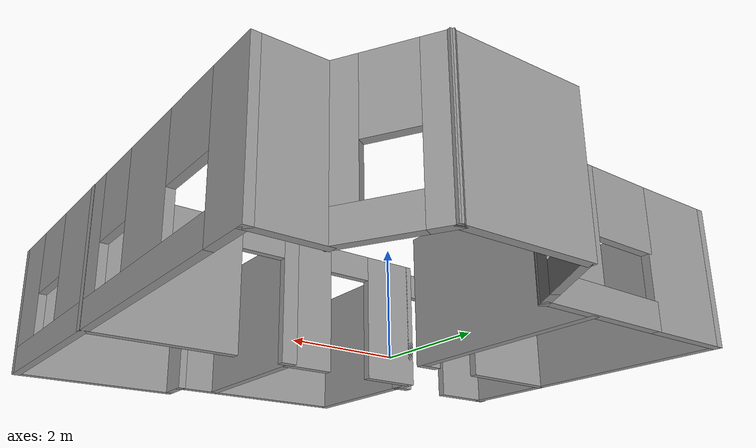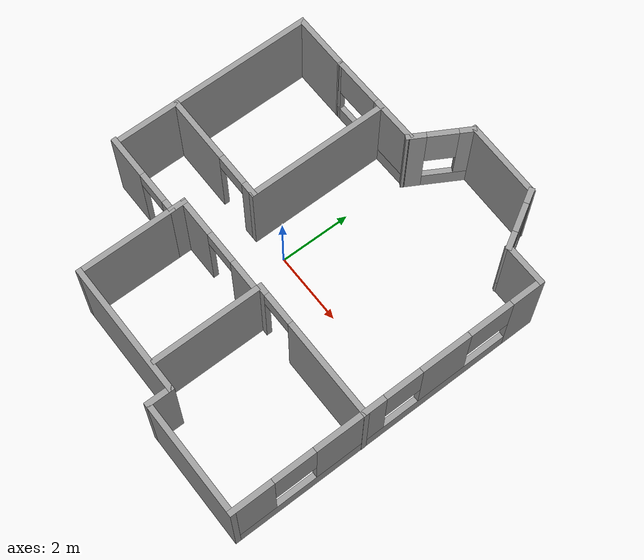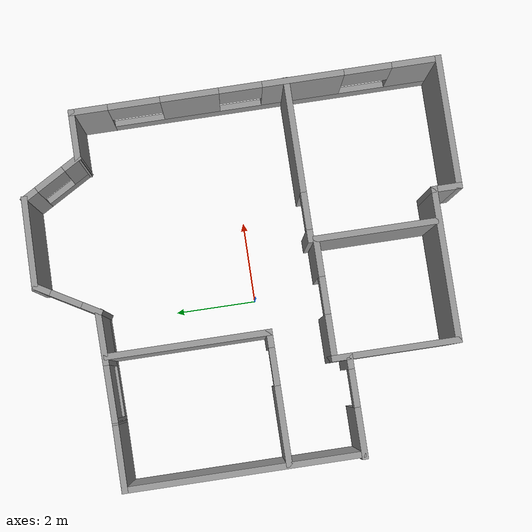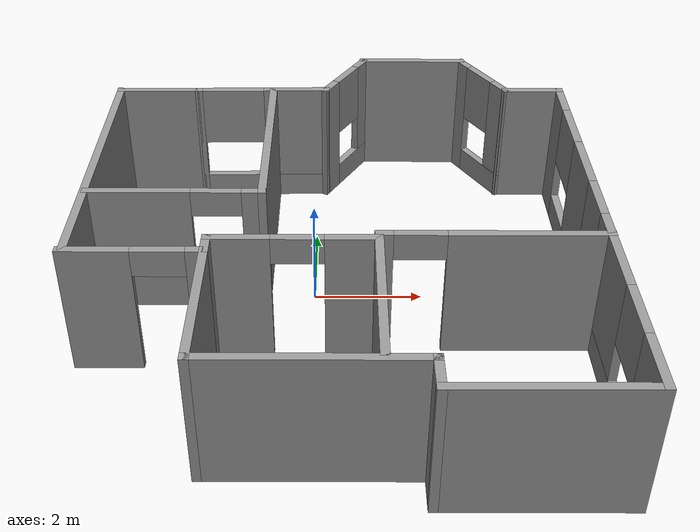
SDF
<?xml version='1.0'?>
<sdf version='1.6'>
  <model name='small_apartment_2'>
    <pose frame=''>0.438933 -0.009338 0 0 -0 0</pose>
    <link name='Wall_0'>
      <collision name='Wall_0_Collision'>
        <geometry>
          <box>
            <size>5.75 0.15 2.5</size>
          </box>
        </geometry>
        <pose frame=''>0 0 1.25 0 -0 0</pose>
      </collision>
      <visual name='Wall_0_Visual'>
        <pose frame=''>0 0 1.25 0 -0 0</pose>
        <geometry>
          <box>
            <size>5.75 0.15 2.5</size>
          </box>
        </geometry>
        <material>
          <script>
            <uri>file://media/materials/scripts/gazebo.material</uri>
            <name>Gazebo/Grey</name>
          </script>
          <ambient>1 1 1 1</ambient>
        </material>
        <meta>
          <layer>0</layer>
        </meta>
      </visual>
      <pose frame=''>-4.47788 0.913964 0 0 -0 1.5708</pose>
    </link>
    <link name='Wall_1'>
      <collision name='Wall_1_Collision'>
        <geometry>
          <box>
            <size>1.75 0.15 2.5</size>
          </box>
        </geometry>
        <pose frame=''>0 0 1.25 0 -0 0</pose>
      </collision>
      <visual name='Wall_1_Visual'>
        <pose frame=''>0 0 1.25 0 -0 0</pose>
        <geometry>
          <box>
            <size>1.75 0.15 2.5</size>
          </box>
        </geometry>
        <material>
          <script>
            <uri>file://media/materials/scripts/gazebo.material</uri>
            <name>Gazebo/Grey</name>
          </script>
          <ambient>1 1 1 1</ambient>
        </material>
        <meta>
          <layer>0</layer>
        </meta>
      </visual>
      <pose frame=''>-3.67788 3.71396 0 0 -0 0</pose>
    </link>
    <link name='Wall_10'>
      <collision name='Wall_10_Collision'>
        <geometry>
          <box>
            <size>3.75 0.15 2.5</size>
          </box>
        </geometry>
        <pose frame=''>0 0 1.25 0 -0 0</pose>
      </collision>
      <visual name='Wall_10_Visual'>
        <pose frame=''>0 0 1.25 0 -0 0</pose>
        <geometry>
          <box>
            <size>3.75 0.15 2.5</size>
          </box>
        </geometry>
        <material>
          <script>
            <uri>file://media/materials/scripts/gazebo.material</uri>
            <name>Gazebo/Grey</name>
          </script>
          <ambient>1 1 1 1</ambient>
        </material>
        <meta>
          <layer>0</layer>
        </meta>
      </visual>
      <pose frame=''>-0.377882 -4.53604 0 0 -0 3.14159</pose>
    </link>
    <link name='Wall_11'>
      <collision name='Wall_11_Collision'>
        <geometry>
          <box>
            <size>2.75 0.15 2.5</size>
          </box>
        </geometry>
        <pose frame=''>0 0 1.25 0 -0 0</pose>
      </collision>
      <visual name='Wall_11_Visual'>
        <pose frame=''>0 0 1.25 0 -0 0</pose>
        <geometry>
          <box>
            <size>2.75 0.15 2.5</size>
          </box>
        </geometry>
        <material>
          <script>
            <uri>file://media/materials/scripts/gazebo.material</uri>
            <name>Gazebo/Grey</name>
          </script>
          <ambient>1 1 1 1</ambient>
        </material>
        <meta>
          <layer>0</layer>
        </meta>
      </visual>
      <pose frame=''>-2.17788 -3.23604 0 0 -0 1.5708</pose>
    </link>
    <link name='Wall_12'>
      <pose frame=''>-3.35288 -1.93604 0 0 -0 3.14159</pose>
      <visual name='Wall_12_Visual_0'>
        <pose frame=''>-1.06143 0 1.25 0 -0 0</pose>
        <geometry>
          <box>
            <size>0.377135 0.15 2.5</size>
          </box>
        </geometry>
        <material>
          <script>
            <uri>file://media/materials/scripts/gazebo.material</uri>
            <name>Gazebo/Grey</name>
          </script>
          <ambient>1 1 1 1</ambient>
        </material>
        <meta>
          <layer>0</layer>
        </meta>
      </visual>
      <collision name='Wall_12_Collision_0'>
        <geometry>
          <box>
            <size>0.377135 0.15 2.5</size>
          </box>
        </geometry>
        <pose frame=''>-1.06143 0 1.25 0 -0 0</pose>
      </collision>
      <visual name='Wall_12_Visual_1'>
        <pose frame=''>0.638567 0 1.25 0 -0 0</pose>
        <geometry>
          <box>
            <size>1.22287 0.15 2.5</size>
          </box>
        </geometry>
        <material>
          <script>
            <uri>file://media/materials/scripts/gazebo.material</uri>
            <name>Gazebo/Grey</name>
          </script>
          <ambient>1 1 1 1</ambient>
        </material>
        <meta>
          <layer>0</layer>
        </meta>
      </visual>
      <collision name='Wall_12_Collision_1'>
        <geometry>
          <box>
            <size>1.22287 0.15 2.5</size>
          </box>
        </geometry>
        <pose frame=''>0.638567 0 1.25 0 -0 0</pose>
      </collision>
      <visual name='Wall_12_Visual_2'>
        <pose frame=''>-0.422865 0 2.25 0 -0 0</pose>
        <geometry>
          <box>
            <size>0.9 0.15 0.5</size>
          </box>
        </geometry>
        <material>
          <script>
            <uri>file://media/materials/scripts/gazebo.material</uri>
            <name>Gazebo/Grey</name>
          </script>
          <ambient>1 1 1 1</ambient>
        </material>
        <meta>
          <layer>0</layer>
        </meta>
      </visual>
      <collision name='Wall_12_Collision_2'>
        <geometry>
          <box>
            <size>0.9 0.15 0.5</size>
          </box>
        </geometry>
        <pose frame=''>-0.422865 0 2.25 0 -0 0</pose>
      </collision>
    </link>
    <link name='Wall_14'>
      <pose frame=''>-2.8927 -0.162277 0 0 -0 0</pose>
      <visual name='Wall_14_Visual_0'>
        <pose frame=''>-0.66919 0 1.25 0 -0 0</pose>
        <geometry>
          <box>
            <size>1.91162 0.15 2.5</size>
          </box>
        </geometry>
        <material>
          <script>
            <uri>file://media/materials/scripts/gazebo.material</uri>
            <name>Gazebo/Grey</name>
          </script>
          <ambient>1 1 1 1</ambient>
        </material>
        <meta>
          <layer>0</layer>
        </meta>
      </visual>
      <collision name='Wall_14_Collision_0'>
        <geometry>
          <box>
            <size>1.91162 0.15 2.5</size>
          </box>
        </geometry>
        <pose frame=''>-0.66919 0 1.25 0 -0 0</pose>
      </collision>
      <visual name='Wall_14_Visual_1'>
        <pose frame=''>1.40581 0 1.25 0 -0 0</pose>
        <geometry>
          <box>
            <size>0.43838 0.15 2.5</size>
          </box>
        </geometry>
        <material>
          <script>
            <uri>file://media/materials/scripts/gazebo.material</uri>
            <name>Gazebo/Grey</name>
          </script>
          <ambient>1 1 1 1</ambient>
        </material>
        <meta>
          <layer>0</layer>
        </meta>
      </visual>
      <collision name='Wall_14_Collision_1'>
        <geometry>
          <box>
            <size>0.43838 0.15 2.5</size>
          </box>
        </geometry>
        <pose frame=''>1.40581 0 1.25 0 -0 0</pose>
      </collision>
      <visual name='Wall_14_Visual_2'>
        <pose frame=''>0.73662 0 2.25 0 -0 0</pose>
        <geometry>
          <box>
            <size>0.9 0.15 0.5</size>
          </box>
        </geometry>
        <material>
          <script>
            <uri>file://media/materials/scripts/gazebo.material</uri>
            <name>Gazebo/Grey</name>
          </script>
          <ambient>1 1 1 1</ambient>
        </material>
        <meta>
          <layer>0</layer>
        </meta>
      </visual>
      <collision name='Wall_14_Collision_2'>
        <geometry>
          <box>
            <size>0.9 0.15 0.5</size>
          </box>
        </geometry>
        <pose frame=''>0.73662 0 2.25 0 -0 0</pose>
      </collision>
    </link>
    <link name='Wall_15'>
      <collision name='Wall_15_Collision'>
        <geometry>
          <box>
            <size>4 0.15 2.5</size>
          </box>
        </geometry>
        <pose frame=''>0 0 1.25 0 -0 0</pose>
      </collision>
      <visual name='Wall_15_Visual'>
        <pose frame=''>0 0 1.25 0 -0 0</pose>
        <geometry>
          <box>
            <size>4 0.15 2.5</size>
          </box>
        </geometry>
        <material>
          <script>
            <uri>file://media/materials/scripts/gazebo.material</uri>
            <name>Gazebo/Grey</name>
          </script>
          <ambient>1 1 1 1</ambient>
        </material>
        <meta>
          <layer>0</layer>
        </meta>
      </visual>
      <pose frame=''>-1.3427 1.76272 0 0 -0 1.5708</pose>
    </link>
    <link name='Wall_17'>
      <collision name='Wall_17_Collision'>
        <geometry>
          <box>
            <size>0.5 0.15 2.5</size>
          </box>
        </geometry>
        <pose frame=''>0 0 1.25 0 -0 0</pose>
      </collision>
      <visual name='Wall_17_Visual'>
        <pose frame=''>0 0 1.25 0 -0 0</pose>
        <geometry>
          <box>
            <size>0.5 0.15 2.5</size>
          </box>
        </geometry>
        <material>
          <script>
            <uri>file://media/materials/scripts/gazebo.material</uri>
            <name>Gazebo/Grey</name>
          </script>
          <ambient>1 1 1 1</ambient>
        </material>
        <meta>
          <layer>0</layer>
        </meta>
      </visual>
      <pose frame=''>-2.17788 -1.76104 0 0 -0 1.5708</pose>
    </link>
    <link name='Wall_18'>
      <pose frame=''>-0.752882 -1.58604 0 0 -0 0</pose>
      <visual name='Wall_18_Visual_0'>
        <pose frame=''>-0.937847 0 1.25 0 -0 0</pose>
        <geometry>
          <box>
            <size>1.12431 0.15 2.5</size>
          </box>
        </geometry>
        <material>
          <script>
            <uri>file://media/materials/scripts/gazebo.material</uri>
            <name>Gazebo/Grey</name>
          </script>
          <ambient>1 1 1 1</ambient>
        </material>
        <meta>
          <layer>0</layer>
        </meta>
      </visual>
      <collision name='Wall_18_Collision_0'>
        <geometry>
          <box>
            <size>1.12431 0.15 2.5</size>
          </box>
        </geometry>
        <pose frame=''>-0.937847 0 1.25 0 -0 0</pose>
      </collision>
      <visual name='Wall_18_Visual_1'>
        <pose frame=''>1.01215 0 1.25 0 -0 0</pose>
        <geometry>
          <box>
            <size>0.975694 0.15 2.5</size>
          </box>
        </geometry>
        <material>
          <script>
            <uri>file://media/materials/scripts/gazebo.material</uri>
            <name>Gazebo/Grey</name>
          </script>
          <ambient>1 1 1 1</ambient>
        </material>
        <meta>
          <layer>0</layer>
        </meta>
      </visual>
      <collision name='Wall_18_Collision_1'>
        <geometry>
          <box>
            <size>0.975694 0.15 2.5</size>
          </box>
        </geometry>
        <pose frame=''>1.01215 0 1.25 0 -0 0</pose>
      </collision>
      <visual name='Wall_18_Visual_2'>
        <pose frame=''>0.074306 0 2.25 0 -0 0</pose>
        <geometry>
          <box>
            <size>0.9 0.15 0.5</size>
          </box>
        </geometry>
        <material>
          <script>
            <uri>file://media/materials/scripts/gazebo.material</uri>
            <name>Gazebo/Grey</name>
          </script>
          <ambient>1 1 1 1</ambient>
        </material>
        <meta>
          <layer>0</layer>
        </meta>
      </visual>
      <collision name='Wall_18_Collision_2'>
        <geometry>
          <box>
            <size>0.9 0.15 0.5</size>
          </box>
        </geometry>
        <pose frame=''>0.074306 0 2.25 0 -0 0</pose>
      </collision>
    </link>
    <link name='Wall_19'>
      <collision name='Wall_19_Collision'>
        <geometry>
          <box>
            <size>3 0.15 2.5</size>
          </box>
        </geometry>
        <pose frame=''>0 0 1.25 0 -0 0</pose>
      </collision>
      <visual name='Wall_19_Visual'>
        <pose frame=''>0 0 1.25 0 -0 0</pose>
        <geometry>
          <box>
            <size>3 0.15 2.5</size>
          </box>
        </geometry>
        <material>
          <script>
            <uri>file://media/materials/scripts/gazebo.material</uri>
            <name>Gazebo/Grey</name>
          </script>
          <ambient>1 1 1 1</ambient>
        </material>
        <meta>
          <layer>0</layer>
        </meta>
      </visual>
      <pose frame=''>0.672118 -3.01104 0 0 0 -1.5708</pose>
    </link>
    <link name='Wall_2'>
      <pose frame=''>-1.57788 3.73155 0 0 -0 0.013529</pose>
      <visual name='Wall_2_Visual_0'>
        <pose frame=''>-1.35252 0 1.25 0 -0 0</pose>
        <geometry>
          <box>
            <size>0.044951 0.15 2.5</size>
          </box>
        </geometry>
        <material>
          <script>
            <uri>file://media/materials/scripts/gazebo.material</uri>
            <name>Gazebo/Grey</name>
          </script>
          <ambient>1 1 1 1</ambient>
        </material>
        <meta>
          <layer>0</layer>
        </meta>
      </visual>
      <collision name='Wall_2_Collision_0'>
        <geometry>
          <box>
            <size>0.044951 0.15 2.5</size>
          </box>
        </geometry>
        <pose frame=''>-1.35252 0 1.25 0 -0 0</pose>
      </collision>
      <visual name='Wall_2_Visual_1'>
        <pose frame=''>0.022476 0 0.25 0 -0 0</pose>
        <geometry>
          <box>
            <size>2.70505 0.15 0.5</size>
          </box>
        </geometry>
        <material>
          <script>
            <uri>file://media/materials/scripts/gazebo.material</uri>
            <name>Gazebo/Grey</name>
          </script>
          <ambient>1 1 1 1</ambient>
        </material>
        <meta>
          <layer>0</layer>
        </meta>
      </visual>
      <collision name='Wall_2_Collision_1'>
        <geometry>
          <box>
            <size>2.70505 0.15 0.5</size>
          </box>
        </geometry>
        <pose frame=''>0.022476 0 0.25 0 -0 0</pose>
      </collision>
      <visual name='Wall_2_Visual_2'>
        <pose frame=''>0.703906 0 1.5 0 -0 0</pose>
        <geometry>
          <box>
            <size>1.34219 0.15 2</size>
          </box>
        </geometry>
        <material>
          <script>
            <uri>file://media/materials/scripts/gazebo.material</uri>
            <name>Gazebo/Grey</name>
          </script>
          <ambient>1 1 1 1</ambient>
        </material>
        <meta>
          <layer>0</layer>
        </meta>
      </visual>
      <collision name='Wall_2_Collision_2'>
        <geometry>
          <box>
            <size>1.34219 0.15 2</size>
          </box>
        </geometry>
        <pose frame=''>0.703906 0 1.5 0 -0 0</pose>
      </collision>
      <visual name='Wall_2_Visual_3'>
        <pose frame=''>-0.648618 0 1.9 0 -0 0</pose>
        <geometry>
          <box>
            <size>1.36286 0.15 1.2</size>
          </box>
        </geometry>
        <material>
          <script>
            <uri>file://media/materials/scripts/gazebo.material</uri>
            <name>Gazebo/Grey</name>
          </script>
          <ambient>1 1 1 1</ambient>
        </material>
        <meta>
          <layer>0</layer>
        </meta>
      </visual>
      <collision name='Wall_2_Collision_3'>
        <geometry>
          <box>
            <size>1.36286 0.15 1.2</size>
          </box>
        </geometry>
        <pose frame=''>-0.648618 0 1.9 0 -0 0</pose>
      </collision>
    </link>
    <link name='Wall_21'>
      <pose frame=''>2.60288 -1.46389 0 0 -0 3.14159</pose>
      <visual name='Wall_21_Visual_0'>
        <pose frame=''>-0.605442 0 1.25 0 -0 0</pose>
        <geometry>
          <box>
            <size>2.78912 0.15 2.5</size>
          </box>
        </geometry>
        <material>
          <script>
            <uri>file://media/materials/scripts/gazebo.material</uri>
            <name>Gazebo/Grey</name>
          </script>
          <ambient>1 1 1 1</ambient>
        </material>
        <meta>
          <layer>0</layer>
        </meta>
      </visual>
      <collision name='Wall_21_Collision_0'>
        <geometry>
          <box>
            <size>2.78912 0.15 2.5</size>
          </box>
        </geometry>
        <pose frame=''>-0.605442 0 1.25 0 -0 0</pose>
      </collision>
      <visual name='Wall_21_Visual_1'>
        <pose frame=''>1.84456 0 1.25 0 -0 0</pose>
        <geometry>
          <box>
            <size>0.310883 0.15 2.5</size>
          </box>
        </geometry>
        <material>
          <script>
            <uri>file://media/materials/scripts/gazebo.material</uri>
            <name>Gazebo/Grey</name>
          </script>
          <ambient>1 1 1 1</ambient>
        </material>
        <meta>
          <layer>0</layer>
        </meta>
      </visual>
      <collision name='Wall_21_Collision_1'>
        <geometry>
          <box>
            <size>0.310883 0.15 2.5</size>
          </box>
        </geometry>
        <pose frame=''>1.84456 0 1.25 0 -0 0</pose>
      </collision>
      <visual name='Wall_21_Visual_2'>
        <pose frame=''>1.23912 0 2.25 0 -0 0</pose>
        <geometry>
          <box>
            <size>0.9 0.15 0.5</size>
          </box>
        </geometry>
        <material>
          <script>
            <uri>file://media/materials/scripts/gazebo.material</uri>
            <name>Gazebo/Grey</name>
          </script>
          <ambient>1 1 1 1</ambient>
        </material>
        <meta>
          <layer>0</layer>
        </meta>
      </visual>
      <collision name='Wall_21_Collision_2'>
        <geometry>
          <box>
            <size>0.9 0.15 0.5</size>
          </box>
        </geometry>
        <pose frame=''>1.23912 0 2.25 0 -0 0</pose>
      </collision>
    </link>
    <link name='Wall_3'>
      <pose frame=''>0.122118 4.40678 0 0 -0 1.0472</pose>
      <visual name='Wall_3_Visual_0'>
        <pose frame=''>-0.615997 0 1.25 0 -0 0</pose>
        <geometry>
          <box>
            <size>0.518006 0.15 2.5</size>
          </box>
        </geometry>
        <material>
          <script>
            <uri>file://media/materials/scripts/gazebo.material</uri>
            <name>Gazebo/Grey</name>
          </script>
          <ambient>1 1 1 1</ambient>
        </material>
        <meta>
          <layer>0</layer>
        </meta>
      </visual>
      <collision name='Wall_3_Collision_0'>
        <geometry>
          <box>
            <size>0.518006 0.15 2.5</size>
          </box>
        </geometry>
        <pose frame=''>-0.615997 0 1.25 0 -0 0</pose>
      </collision>
      <visual name='Wall_3_Visual_1'>
        <pose frame=''>0.259003 0 0.25 0 -0 0</pose>
        <geometry>
          <box>
            <size>1.23199 0.15 0.5</size>
          </box>
        </geometry>
        <material>
          <script>
            <uri>file://media/materials/scripts/gazebo.material</uri>
            <name>Gazebo/Grey</name>
          </script>
          <ambient>1 1 1 1</ambient>
        </material>
        <meta>
          <layer>0</layer>
        </meta>
      </visual>
      <collision name='Wall_3_Collision_1'>
        <geometry>
          <box>
            <size>1.23199 0.15 0.5</size>
          </box>
        </geometry>
        <pose frame=''>0.259003 0 0.25 0 -0 0</pose>
      </collision>
      <visual name='Wall_3_Visual_2'>
        <pose frame=''>0.659003 0 1.5 0 -0 0</pose>
        <geometry>
          <box>
            <size>0.431994 0.15 2</size>
          </box>
        </geometry>
        <material>
          <script>
            <uri>file://media/materials/scripts/gazebo.material</uri>
            <name>Gazebo/Grey</name>
          </script>
          <ambient>1 1 1 1</ambient>
        </material>
        <meta>
          <layer>0</layer>
        </meta>
      </visual>
      <collision name='Wall_3_Collision_2'>
        <geometry>
          <box>
            <size>0.431994 0.15 2</size>
          </box>
        </geometry>
        <pose frame=''>0.659003 0 1.5 0 -0 0</pose>
      </collision>
      <visual name='Wall_3_Visual_3'>
        <pose frame=''>0.043006 0 1.9 0 -0 0</pose>
        <geometry>
          <box>
            <size>0.8 0.15 1.2</size>
          </box>
        </geometry>
        <material>
          <script>
            <uri>file://media/materials/scripts/gazebo.material</uri>
            <name>Gazebo/Grey</name>
          </script>
          <ambient>1 1 1 1</ambient>
        </material>
        <meta>
          <layer>0</layer>
        </meta>
      </visual>
      <collision name='Wall_3_Collision_3'>
        <geometry>
          <box>
            <size>0.8 0.15 1.2</size>
          </box>
        </geometry>
        <pose frame=''>0.043006 0 1.9 0 -0 0</pose>
      </collision>
    </link>
    <link name='Wall_4'>
      <collision name='Wall_4_Collision'>
        <geometry>
          <box>
            <size>2.25118 0.15 2.5</size>
          </box>
        </geometry>
        <pose frame=''>0 0 1.25 0 -0 0</pose>
      </collision>
      <visual name='Wall_4_Visual'>
        <pose frame=''>0 0 1.25 0 -0 0</pose>
        <geometry>
          <box>
            <size>2.25118 0.15 2.5</size>
          </box>
        </geometry>
        <material>
          <script>
            <uri>file://media/materials/scripts/gazebo.material</uri>
            <name>Gazebo/Grey</name>
          </script>
          <ambient>1 1 1 1</ambient>
        </material>
        <meta>
          <layer>0</layer>
        </meta>
      </visual>
      <pose frame=''>1.57212 5.11719 0 0 0 -0.01675</pose>
    </link>
    <link name='Wall_5'>
      <pose frame=''>3.02212 4.40678 0 0 0 -1.0472</pose>
      <visual name='Wall_5_Visual_0'>
        <pose frame=''>-0.654548 0 1.25 0 -0 0</pose>
        <geometry>
          <box>
            <size>0.440904 0.15 2.5</size>
          </box>
        </geometry>
        <material>
          <script>
            <uri>file://media/materials/scripts/gazebo.material</uri>
            <name>Gazebo/Grey</name>
          </script>
          <ambient>1 1 1 1</ambient>
        </material>
        <meta>
          <layer>0</layer>
        </meta>
      </visual>
      <collision name='Wall_5_Collision_0'>
        <geometry>
          <box>
            <size>0.440904 0.15 2.5</size>
          </box>
        </geometry>
        <pose frame=''>-0.654548 0 1.25 0 -0 0</pose>
      </collision>
      <visual name='Wall_5_Visual_1'>
        <pose frame=''>0.220452 0 0.25 0 -0 0</pose>
        <geometry>
          <box>
            <size>1.3091 0.15 0.5</size>
          </box>
        </geometry>
        <material>
          <script>
            <uri>file://media/materials/scripts/gazebo.material</uri>
            <name>Gazebo/Grey</name>
          </script>
          <ambient>1 1 1 1</ambient>
        </material>
        <meta>
          <layer>0</layer>
        </meta>
      </visual>
      <collision name='Wall_5_Collision_1'>
        <geometry>
          <box>
            <size>1.3091 0.15 0.5</size>
          </box>
        </geometry>
        <pose frame=''>0.220452 0 0.25 0 -0 0</pose>
      </collision>
      <visual name='Wall_5_Visual_2'>
        <pose frame=''>0.620452 0 1.5 0 -0 0</pose>
        <geometry>
          <box>
            <size>0.509096 0.15 2</size>
          </box>
        </geometry>
        <material>
          <script>
            <uri>file://media/materials/scripts/gazebo.material</uri>
            <name>Gazebo/Grey</name>
          </script>
          <ambient>1 1 1 1</ambient>
        </material>
        <meta>
          <layer>0</layer>
        </meta>
      </visual>
      <collision name='Wall_5_Collision_2'>
        <geometry>
          <box>
            <size>0.509096 0.15 2</size>
          </box>
        </geometry>
        <pose frame=''>0.620452 0 1.5 0 -0 0</pose>
      </collision>
      <visual name='Wall_5_Visual_3'>
        <pose frame=''>-0.034096 0 1.9 0 -0 0</pose>
        <geometry>
          <box>
            <size>0.8 0.15 1.2</size>
          </box>
        </geometry>
        <material>
          <script>
            <uri>file://media/materials/scripts/gazebo.material</uri>
            <name>Gazebo/Grey</name>
          </script>
          <ambient>1 1 1 1</ambient>
        </material>
        <meta>
          <layer>0</layer>
        </meta>
      </visual>
      <collision name='Wall_5_Collision_3'>
        <geometry>
          <box>
            <size>0.8 0.15 1.2</size>
          </box>
        </geometry>
        <pose frame=''>-0.034096 0 1.9 0 -0 0</pose>
      </collision>
    </link>
    <link name='Wall_6'>
      <collision name='Wall_6_Collision'>
        <geometry>
          <box>
            <size>1.25 0.15 2.5</size>
          </box>
        </geometry>
        <pose frame=''>0 0 1.25 0 -0 0</pose>
      </collision>
      <visual name='Wall_6_Visual'>
        <pose frame=''>0 0 1.25 0 -0 0</pose>
        <geometry>
          <box>
            <size>1.25 0.15 2.5</size>
          </box>
        </geometry>
        <material>
          <script>
            <uri>file://media/materials/scripts/gazebo.material</uri>
            <name>Gazebo/Grey</name>
          </script>
          <ambient>1 1 1 1</ambient>
        </material>
        <meta>
          <layer>0</layer>
        </meta>
      </visual>
      <pose frame=''>3.97212 3.71396 0 0 -0 0</pose>
    </link>
    <link name='Wall_7'>
      <pose frame=''>4.52212 -0.711036 0 0 0 -1.5708</pose>
      <visual name='Wall_7_Visual_0'>
        <pose frame=''>-4.02599 0 1.25 0 -0 0</pose>
        <geometry>
          <box>
            <size>0.948012 0.15 2.5</size>
          </box>
        </geometry>
        <material>
          <script>
            <uri>file://media/materials/scripts/gazebo.material</uri>
            <name>Gazebo/Grey</name>
          </script>
          <ambient>1 1 1 1</ambient>
        </material>
        <meta>
          <layer>0</layer>
        </meta>
      </visual>
      <collision name='Wall_7_Collision_0'>
        <geometry>
          <box>
            <size>0.948012 0.15 2.5</size>
          </box>
        </geometry>
        <pose frame=''>-4.02599 0 1.25 0 -0 0</pose>
      </collision>
      <visual name='Wall_7_Visual_1'>
        <pose frame=''>0.474006 0 0.25 0 -0 0</pose>
        <geometry>
          <box>
            <size>8.05199 0.15 0.5</size>
          </box>
        </geometry>
        <material>
          <script>
            <uri>file://media/materials/scripts/gazebo.material</uri>
            <name>Gazebo/Grey</name>
          </script>
          <ambient>1 1 1 1</ambient>
        </material>
        <meta>
          <layer>0</layer>
        </meta>
      </visual>
      <collision name='Wall_7_Collision_1'>
        <geometry>
          <box>
            <size>8.05199 0.15 0.5</size>
          </box>
        </geometry>
        <pose frame=''>0.474006 0 0.25 0 -0 0</pose>
      </collision>
      <visual name='Wall_7_Visual_2'>
        <pose frame=''>-1.58653 0 1.5 0 -0 0</pose>
        <geometry>
          <box>
            <size>1.41626 0.15 2</size>
          </box>
        </geometry>
        <material>
          <script>
            <uri>file://media/materials/scripts/gazebo.material</uri>
            <name>Gazebo/Grey</name>
          </script>
          <ambient>1 1 1 1</ambient>
        </material>
        <meta>
          <layer>0</layer>
        </meta>
      </visual>
      <collision name='Wall_7_Collision_2'>
        <geometry>
          <box>
            <size>1.41626 0.15 2</size>
          </box>
        </geometry>
        <pose frame=''>-1.58653 0 1.5 0 -0 0</pose>
      </collision>
      <visual name='Wall_7_Visual_3'>
        <pose frame=''>1.15741 0 1.5 0 -0 0</pose>
        <geometry>
          <box>
            <size>1.97912 0.15 2</size>
          </box>
        </geometry>
        <material>
          <script>
            <uri>file://media/materials/scripts/gazebo.material</uri>
            <name>Gazebo/Grey</name>
          </script>
          <ambient>1 1 1 1</ambient>
        </material>
        <meta>
          <layer>0</layer>
        </meta>
      </visual>
      <collision name='Wall_7_Collision_3'>
        <geometry>
          <box>
            <size>1.97912 0.15 2</size>
          </box>
        </geometry>
        <pose frame=''>1.15741 0 1.5 0 -0 0</pose>
      </collision>
      <visual name='Wall_7_Visual_4'>
        <pose frame=''>3.89938 0 1.5 0 -0 0</pose>
        <geometry>
          <box>
            <size>1.20124 0.15 2</size>
          </box>
        </geometry>
        <material>
          <script>
            <uri>file://media/materials/scripts/gazebo.material</uri>
            <name>Gazebo/Grey</name>
          </script>
          <ambient>1 1 1 1</ambient>
        </material>
        <meta>
          <layer>0</layer>
        </meta>
      </visual>
      <collision name='Wall_7_Collision_4'>
        <geometry>
          <box>
            <size>1.20124 0.15 2</size>
          </box>
        </geometry>
        <pose frame=''>3.89938 0 1.5 0 -0 0</pose>
      </collision>
      <visual name='Wall_7_Visual_5'>
        <pose frame=''>-2.92333 0 1.9 0 -0 0</pose>
        <geometry>
          <box>
            <size>1.25732 0.15 1.2</size>
          </box>
        </geometry>
        <material>
          <script>
            <uri>file://media/materials/scripts/gazebo.material</uri>
            <name>Gazebo/Grey</name>
          </script>
          <ambient>1 1 1 1</ambient>
        </material>
        <meta>
          <layer>0</layer>
        </meta>
      </visual>
      <collision name='Wall_7_Collision_5'>
        <geometry>
          <box>
            <size>1.25732 0.15 1.2</size>
          </box>
        </geometry>
        <pose frame=''>-2.92333 0 1.9 0 -0 0</pose>
      </collision>
      <visual name='Wall_7_Visual_6'>
        <pose frame=''>-0.355276 0 1.9 0 -0 0</pose>
        <geometry>
          <box>
            <size>1.04625 0.15 1.2</size>
          </box>
        </geometry>
        <material>
          <script>
            <uri>file://media/materials/scripts/gazebo.material</uri>
            <name>Gazebo/Grey</name>
          </script>
          <ambient>1 1 1 1</ambient>
        </material>
        <meta>
          <layer>0</layer>
        </meta>
      </visual>
      <collision name='Wall_7_Collision_6'>
        <geometry>
          <box>
            <size>1.04625 0.15 1.2</size>
          </box>
        </geometry>
        <pose frame=''>-0.355276 0 1.9 0 -0 0</pose>
      </collision>
      <visual name='Wall_7_Visual_7'>
        <pose frame=''>2.72287 0 1.9 0 -0 0</pose>
        <geometry>
          <box>
            <size>1.15179 0.15 1.2</size>
          </box>
        </geometry>
        <material>
          <script>
            <uri>file://media/materials/scripts/gazebo.material</uri>
            <name>Gazebo/Grey</name>
          </script>
          <ambient>1 1 1 1</ambient>
        </material>
        <meta>
          <layer>0</layer>
        </meta>
      </visual>
      <collision name='Wall_7_Collision_7'>
        <geometry>
          <box>
            <size>1.15179 0.15 1.2</size>
          </box>
        </geometry>
        <pose frame=''>2.72287 0 1.9 0 -0 0</pose>
      </collision>
    </link>
    <link name='Wall_8'>
      <collision name='Wall_8_Collision'>
        <geometry>
          <box>
            <size>3.25 0.15 2.5</size>
          </box>
        </geometry>
        <pose frame=''>0 0 1.25 0 -0 0</pose>
      </collision>
      <visual name='Wall_8_Visual'>
        <pose frame=''>0 0 1.25 0 -0 0</pose>
        <geometry>
          <box>
            <size>3.25 0.15 2.5</size>
          </box>
        </geometry>
        <material>
          <script>
            <uri>file://media/materials/scripts/gazebo.material</uri>
            <name>Gazebo/Grey</name>
          </script>
          <ambient>1 1 1 1</ambient>
        </material>
        <meta>
          <layer>0</layer>
        </meta>
      </visual>
      <pose frame=''>2.97212 -5.13604 0 0 -0 3.14159</pose>
    </link>
    <link name='Wall_9'>
      <collision name='Wall_9_Collision'>
        <geometry>
          <box>
            <size>0.75 0.15 2.5</size>
          </box>
        </geometry>
        <pose frame=''>0 0 1.25 0 -0 0</pose>
      </collision>
      <visual name='Wall_9_Visual'>
        <pose frame=''>0 0 1.25 0 -0 0</pose>
        <geometry>
          <box>
            <size>0.75 0.15 2.5</size>
          </box>
        </geometry>
        <material>
          <script>
            <uri>file://media/materials/scripts/gazebo.material</uri>
            <name>Gazebo/Grey</name>
          </script>
          <ambient>1 1 1 1</ambient>
        </material>
        <meta>
          <layer>0</layer>
        </meta>
      </visual>
      <pose frame=''>1.42212 -4.83604 0 0 -0 1.5708</pose>
    </link>
    <static>1</static>
  </model>
</sdf>
